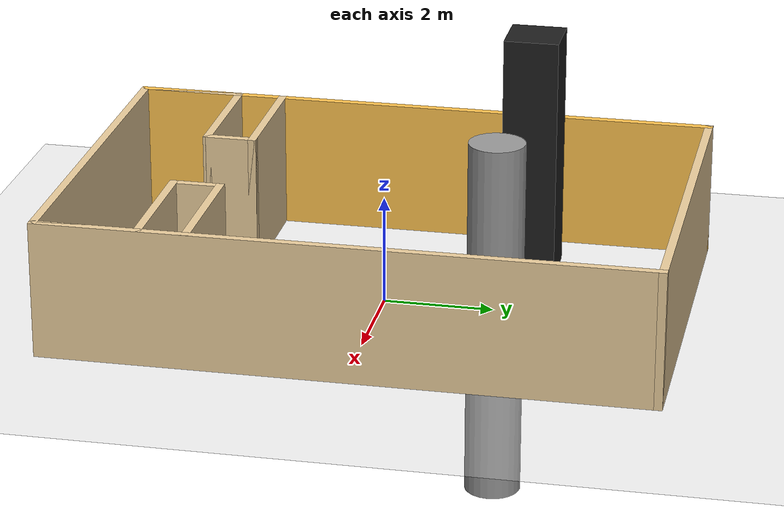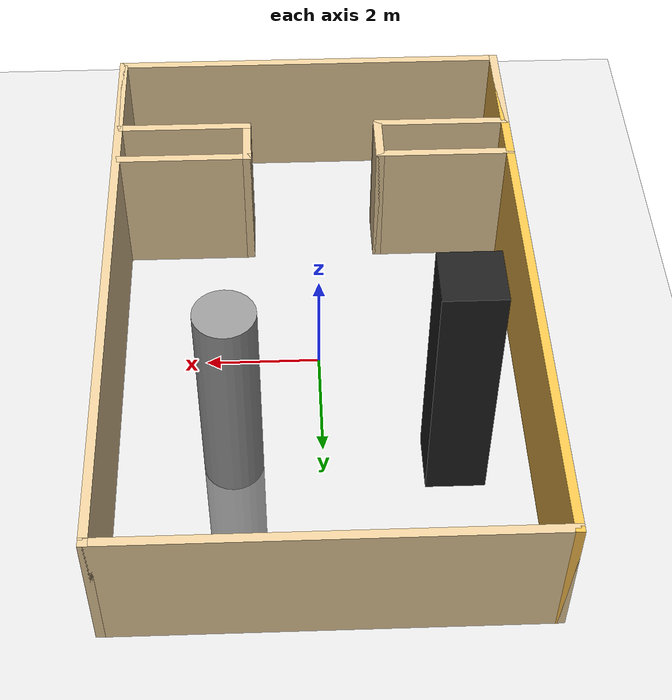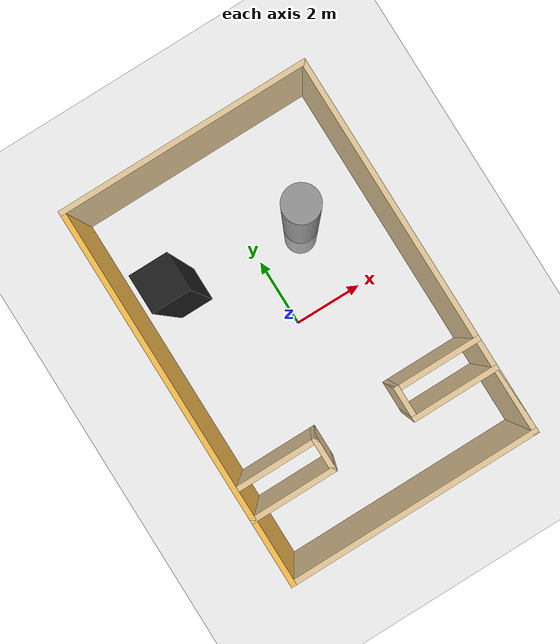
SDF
<sdf version="1.6">
 <world name="default">
  <light name="sun" type="directional">
   <pose>0 0 10 0 -0 0</pose>
   <diffuse>0.8 0.8 0.8 1</diffuse>
   <specular>0.2 0.2 0.2 1</specular>
   <attenuation>
    <range>1000</range>
    <constant>0.9</constant>
    <linear>0.01</linear>
    <quadratic>0.001</quadratic>
   </attenuation>
   <direction>-0.5 0.1 -0.9</direction>
  </light>
  <model name="ground_plane">
   <static>1</static>
   <link name="link">
    <collision name="collision">
     <geometry><plane><normal>0 0 1</normal><size>100 100</size></plane></geometry>
     <surface><friction><ode><mu>100</mu><mu2>50</mu2></ode></friction></surface>
    </collision>
    <visual name="visual">
     <cast_shadows>0</cast_shadows>
     <geometry><plane><normal>0 0 1</normal><size>100 100</size></plane></geometry>
     <material>
      <script><uri>file://media/materials/scripts/gazebo.material</uri><name>Gazebo/Grey</name></script>
     </material>
    </visual>
   </link>
  </model>
  <gravity>0 0 -9.8</gravity>
  <magnetic_field>6e-06 2.3e-05 -4.2e-05</magnetic_field>
  <atmosphere type="adiabatic"/>
  <physics name="default_physics" default="0" type="ode">
   <max_step_size>0.001</max_step_size>
   <real_time_factor>1</real_time_factor>
   <real_time_update_rate>1000</real_time_update_rate>
  </physics>
  <scene><ambient>0.4 0.4 0.4 1</ambient><background>0.7 0.7 0.7 1</background><shadows>1</shadows></scene>
  <spherical_coordinates>
   <surface_model>EARTH_WGS84</surface_model>
   <latitude_deg>0</latitude_deg>
   <longitude_deg>0</longitude_deg>
   <elevation>0</elevation>
   <heading_deg>0</heading_deg>
  </spherical_coordinates>
  <model name="lasr_layout">
   <link name="Wall_56">
    <collision name="Wall_56_Collision">
     <geometry><box><size>2.5 0.15 2.5</size></box></geometry>
     <pose>0 0 1.25 0 -0 0</pose>
    </collision>
    <visual name="Wall_56_Visual">
     <pose>0 0 1.25 0 -0 0</pose>
     <geometry><box><size>2.5 0.15 2.5</size></box></geometry>
     <material>
      <script><uri>file://media/materials/scripts/gazebo.material</uri><name>Gazebo/Grey</name></script>
      <ambient>0.921569 0.807843 0.615686 1</ambient>
     </material>
     <meta><layer>0</layer></meta>
    </visual>
    <pose>-2.375 -2.725 0 0 -0 0</pose>
   </link>
   <link name="Wall_57">
    <collision name="Wall_57_Collision">
     <geometry><box><size>1 0.15 2.5</size></box></geometry>
     <pose>0 0 1.25 0 -0 0</pose>
    </collision>
    <visual name="Wall_57_Visual">
     <pose>0 0 1.25 0 -0 0</pose>
     <geometry><box><size>1 0.15 2.5</size></box></geometry>
     <material>
      <script><uri>file://media/materials/scripts/gazebo.material</uri><name>Gazebo/Grey</name></script>
      <ambient>0.921569 0.807843 0.615686 1</ambient>
     </material>
     <meta><layer>0</layer></meta>
    </visual>
    <pose>-1.2 -3.15 0 0 -0 -1.5708</pose>
   </link>
   <link name="Wall_58">
    <collision name="Wall_58_Collision">
     <geometry><box><size>2.5 0.15 2.5</size></box></geometry>
     <pose>0 0 1.25 0 -0 0</pose>
    </collision>
    <visual name="Wall_58_Visual">
     <pose>0 0 1.25 0 -0 0</pose>
     <geometry><box><size>2.5 0.15 2.5</size></box></geometry>
     <material>
      <script><uri>file://media/materials/scripts/gazebo.material</uri><name>Gazebo/Grey</name></script>
      <ambient>0.921569 0.807843 0.615686 1</ambient>
     </material>
     <meta><layer>0</layer></meta>
    </visual>
    <pose>-2.375 -3.575 0 0 -0 3.14159</pose>
   </link>
   <link name="Wall_59">
    <collision name="Wall_59_Collision">
     <geometry><box><size>2 0.15 2.5</size></box></geometry>
     <pose>0 0 1.25 0 -0 0</pose>
    </collision>
    <visual name="Wall_59_Visual">
     <pose>0 0 1.25 0 -0 0</pose>
     <geometry><box><size>2 0.15 2.5</size></box></geometry>
     <material>
      <script><uri>file://media/materials/scripts/gazebo.material</uri><name>Gazebo/Grey</name></script>
      <ambient>0.921569 0.807843 0.615686 1</ambient>
     </material>
     <meta><layer>0</layer></meta>
    </visual>
    <pose>-3.55 -4.5 0 0 -0 -1.5708</pose>
   </link>
   <link name="Wall_60">
    <collision name="Wall_60_Collision">
     <geometry><box><size>7.25 0.15 2.5</size></box></geometry>
     <pose>0 0 1.25 0 -0 0</pose>
    </collision>
    <visual name="Wall_60_Visual">
     <pose>0 0 1.25 0 -0 0</pose>
     <geometry><box><size>7.25 0.15 2.5</size></box></geometry>
     <material>
      <script><uri>file://media/materials/scripts/gazebo.material</uri><name>Gazebo/Grey</name></script>
      <ambient>0.921569 0.807843 0.615686 1</ambient>
     </material>
     <meta><layer>0</layer></meta>
    </visual>
    <pose>0 -5.425 0 0 -0 0</pose>
   </link>
   <link name="Wall_64">
    <collision name="Wall_64_Collision">
     <geometry><box><size>2 0.15 2.5</size></box></geometry>
     <pose>0 0 1.25 0 -0 0</pose>
    </collision>
    <visual name="Wall_64_Visual">
     <pose>0 0 1.25 0 -0 0</pose>
     <geometry><box><size>2 0.15 2.5</size></box></geometry>
     <material>
      <script><uri>file://media/materials/scripts/gazebo.material</uri><name>Gazebo/Grey</name></script>
      <ambient>0.921569 0.807843 0.615686 1</ambient>
     </material>
     <meta><layer>0</layer></meta>
    </visual>
    <pose>3.55 -4.5 0 0 -0 1.5708</pose>
   </link>
   <link name="Wall_65">
    <collision name="Wall_65_Collision">
     <geometry><box><size>2.5 0.15 2.5</size></box></geometry>
     <pose>0 0 1.25 0 -0 0</pose>
    </collision>
    <visual name="Wall_65_Visual">
     <pose>0 0 1.25 0 -0 0</pose>
     <geometry><box><size>2.5 0.15 2.5</size></box></geometry>
     <material>
      <script><uri>file://media/materials/scripts/gazebo.material</uri><name>Gazebo/Grey</name></script>
      <ambient>0.921569 0.807843 0.615686 1</ambient>
     </material>
     <meta><layer>0</layer></meta>
    </visual>
    <pose>2.375 -3.575 0 0 -0 3.14159</pose>
   </link>
   <link name="Wall_66">
    <collision name="Wall_66_Collision">
     <geometry><box><size>1 0.15 2.5</size></box></geometry>
     <pose>0 0 1.25 0 -0 0</pose>
    </collision>
    <visual name="Wall_66_Visual">
     <pose>0 0 1.25 0 -0 0</pose>
     <geometry><box><size>1 0.15 2.5</size></box></geometry>
     <material>
      <script><uri>file://media/materials/scripts/gazebo.material</uri><name>Gazebo/Grey</name></script>
      <ambient>0.921569 0.807843 0.615686 1</ambient>
     </material>
     <meta><layer>0</layer></meta>
    </visual>
    <pose>1.2 -3.15 0 0 -0 1.5708</pose>
   </link>
   <link name="Wall_67">
    <collision name="Wall_67_Collision">
     <geometry><box><size>2.5 0.15 2.5</size></box></geometry>
     <pose>0 0 1.25 0 -0 0</pose>
    </collision>
    <visual name="Wall_67_Visual">
     <pose>0 0 1.25 0 -0 0</pose>
     <geometry><box><size>2.5 0.15 2.5</size></box></geometry>
     <material>
      <script><uri>file://media/materials/scripts/gazebo.material</uri><name>Gazebo/Grey</name></script>
      <ambient>0.921569 0.807843 0.615686 1</ambient>
     </material>
     <meta><layer>0</layer></meta>
    </visual>
    <pose>2.375 -2.725 0 0 -0 0</pose>
   </link>
   <link name="Wall_70">
    <collision name="Wall_70_Collision">
     <geometry><box><size>11 0.15 2.5</size></box></geometry>
     <pose>0 0 1.25 0 -0 0</pose>
    </collision>
    <visual name="Wall_70_Visual">
     <pose>0 0 1.25 0 -0 0</pose>
     <geometry><box><size>11 0.15 2.5</size></box></geometry>
     <material>
      <script><uri>file://media/materials/scripts/gazebo.material</uri><name>Gazebo/Grey</name></script>
      <ambient>0.921569 0.807843 0.615686 1</ambient>
     </material>
     <meta><layer>0</layer></meta>
    </visual>
    <pose>3.55 0 0 0 -0 1.5708</pose>
   </link>
   <link name="Wall_72">
    <collision name="Wall_72_Collision">
     <geometry><box><size>11 0.15 2.5</size></box></geometry>
     <pose>0 0 1.25 0 -0 0</pose>
    </collision>
    <visual name="Wall_72_Visual">
     <pose>0 0 1.25 0 -0 0</pose>
     <geometry><box><size>11 0.15 2.5</size></box></geometry>
     <material>
      <script><uri>file://media/materials/scripts/gazebo.material</uri><name>Gazebo/Grey</name></script>
      <ambient>1 0.764706 0.305882 1</ambient>
     </material>
     <meta><layer>0</layer></meta>
    </visual>
    <pose>-3.55 0 0 0 -0 1.5708</pose>
   </link>
   <link name="Wall_73">
    <collision name="Wall_73_Collision">
     <geometry><box><size>7.25 0.15 2.5</size></box></geometry>
     <pose>0 0 1.25 0 -0 0</pose>
    </collision>
    <visual name="Wall_73_Visual">
     <pose>0 0 1.25 0 -0 0</pose>
     <geometry><box><size>7.25 0.15 2.5</size></box></geometry>
     <material>
      <script><uri>file://media/materials/scripts/gazebo.material</uri><name>Gazebo/Grey</name></script>
      <ambient>0.921569 0.807843 0.615686 1</ambient>
     </material>
     <meta><layer>0</layer></meta>
    </visual>
    <pose>0 5.425 0 0 -0 0</pose>
   </link>
   <static>1</static>
  </model>
  <model name="unit_box">
   <pose>-2.17708 2.34423 2.27058 0 0 -0.000728</pose>
   <link name="link">
    <inertial>
     <mass>1</mass>
     <inertia>
      <ixx>0.166667</ixx>
      <ixy>0</ixy>
      <ixz>0</ixz>
      <iyy>0.166667</iyy>
      <iyz>0</iyz>
      <izz>0.166667</izz>
     </inertia>
    </inertial>
    <collision name="collision"><geometry><box><size>1 1 4.54116</size></box></geometry></collision>
    <visual name="visual">
     <geometry><box><size>1 1 4.54116</size></box></geometry>
     <material>
      <script><name>Gazebo/Black</name><uri>file://media/materials/scripts/gazebo.material</uri></script>
     </material>
    </visual>
   </link>
  </model>
  <model name="unit_cylinder_not_yellow">
   <link name="link_0">
    <pose>0.36254 -0.096248 -0.311577 0 -0 0.00021</pose>
    <inertial>
     <mass>6.56376</mass>
     <inertia><ixx>23.9757</ixx><ixy>0</ixy><ixz>0</ixz><iyy>23.9757</iyy><iyz>0</iyz><izz>0.820469</izz></inertia>
    </inertial>
    <visual name="visual">
     <geometry><cylinder><radius>0.5</radius><length>6.56376</length></cylinder></geometry>
     <material>
      <lighting>1</lighting>
      <script><uri>file://media/materials/scripts/gazebo.material</uri><name>Gazebo/Grey</name></script>
      <ambient>0.3 0.3 0.3 1</ambient>
      <diffuse>0.7 0.7 0.7 1</diffuse>
      <specular>0.01 0.01 0.01 1</specular>
      <emissive>0 0 0 1</emissive>
      <shader type="vertex"><normal_map>__default__</normal_map></shader>
     </material>
    </visual>
    <collision name="collision">
     <geometry><cylinder><radius>0.5</radius><length>6.56376</length></cylinder></geometry>
     <surface>
      <friction>
       <ode><mu>1</mu><mu2>1</mu2><fdir1>0 0 0</fdir1><slip1>0</slip1><slip2>0</slip2></ode>
       <torsional>
        <coefficient>1</coefficient>
        <patch_radius>0</patch_radius>
        <surface_radius>0</surface_radius>
        <use_patch_radius>1</use_patch_radius>
        <ode><slip>0</slip></ode>
       </torsional>
      </friction>
      <bounce><restitution_coefficient>0</restitution_coefficient><threshold>1e+06</threshold></bounce>
      <contact>
       <collide_without_contact>0</collide_without_contact>
       <collide_without_contact_bitmask>1</collide_without_contact_bitmask>
       <collide_bitmask>1</collide_bitmask>
       <ode>
        <soft_cfm>0</soft_cfm>
        <soft_erp>0.2</soft_erp>
        <kp>1e+13</kp>
        <kd>1</kd>
        <max_vel>0.01</max_vel>
        <min_depth>0</min_depth>
       </ode>
       <bullet>
        <split_impulse>1</split_impulse>
        <split_impulse_penetration_threshold>-0.01</split_impulse_penetration_threshold>
        <soft_cfm>0</soft_cfm>
        <soft_erp>0.2</soft_erp>
        <kp>1e+13</kp>
        <kd>1</kd>
       </bullet>
      </contact>
     </surface>
    </collision>
   </link>
   <static>0</static>
   <pose>1.14588 2.37578 0.811577 0 0 -0.00021</pose>
  </model>
 </world>
</sdf>
